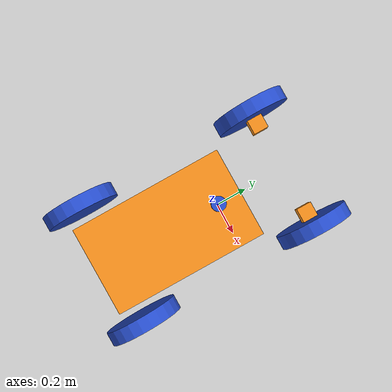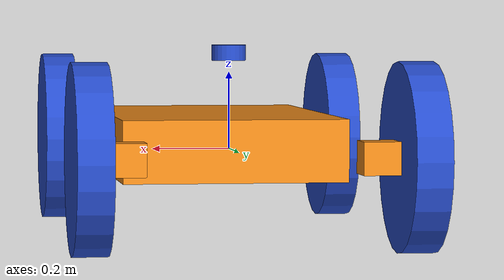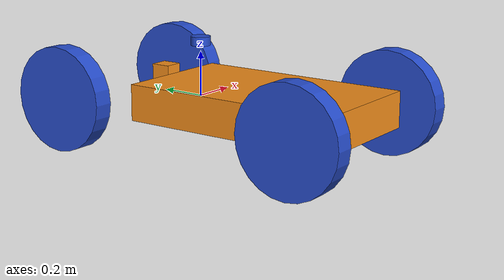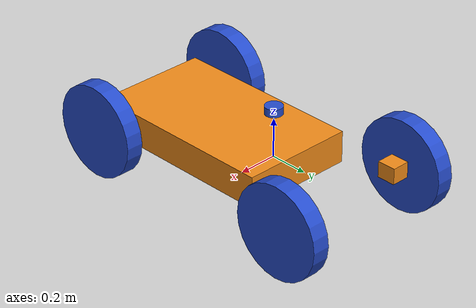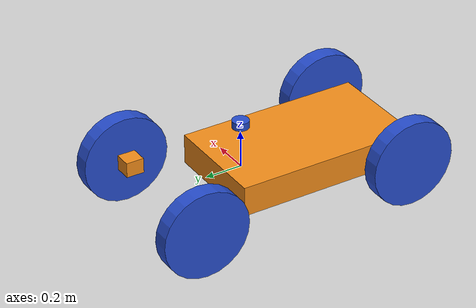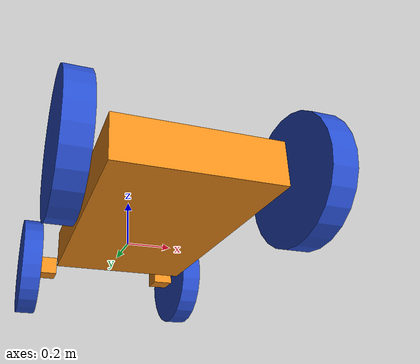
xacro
<?xml version="1.0" ?>

<robot name="mycar" xmlns:xacro="http://www.ros.org/wiki/xacro" >

  <!-- colors/materials -->
  <material name="black">
    <color rgba="0.0 0.0 0.0 1.0" />
  </material>
  <material name="blue">
    <color rgba="0.203125 0.23828125 0.28515625 1.0" />
  </material>
  <material name="green">
    <color rgba="0.0 0.8 0.0 1.0" />
  </material>
  <material name="grey">
    <color rgba="0.2 0.2 0.2 1.0" />
  </material>
  <material name="orange">
    <color rgba="1.0 0.423529411765 0.0392156862745 1.0" />
  </material>
  <material name="brown">
    <color rgba="0.870588235294 0.811764705882 0.764705882353 1.0" />
  </material>
  <material name="red">
    <color rgba="0.80078125 0.12890625 0.1328125 1.0" />
  </material>
  <material name="white">
    <color rgba="1.0 1.0 1.0 1.0" />
  </material>

  <gazebo reference="chassis_link">
    <material>Gazebo/Orange</material>
  </gazebo>
  <gazebo reference="left_steer_block_link">
    <material>Gazebo/Orange</material>
  </gazebo>
  <gazebo reference="right_steer_block_link">
    <material>Gazebo/Orange</material>
  </gazebo>
  <gazebo reference="left_rear_wheel_link">
    <material>Gazebo/Blue</material>
  </gazebo>
  <gazebo reference="right_rear_wheel_link">
    <material>Gazebo/Blue</material>
  </gazebo>
  <gazebo reference="right_front_wheel_link">
    <material>Gazebo/Blue</material>
  </gazebo>
  <gazebo reference="left_front_wheel_link">
    <material>Gazebo/Blue</material>
  </gazebo>

  <!-- gazebo plugin -->
  <gazebo>
    <plugin name="gazebo_ros_control" filename="libgazebo_ros_control.so">
      <robotNamespace>/ackermann</robotNamespace>
    </plugin>
  </gazebo>

  <!-- joint controllers -->
  <transmission name="left_rear_wheel_trans">
    <type>transmission_interface/SimpleTransmission</type>
    <actuator name="motor_left" >
      <hardwareInterface>hardware_interface/EffortJointInterface</hardwareInterface>
      <mechanicalReduction>1</mechanicalReduction>
    </actuator>
    <joint name="left_rear_wheel_joint">
      <hardwareInterface>hardware_interface/EffortJointInterface</hardwareInterface>
    </joint>
  </transmission>

  <transmission name="right_rear_wheel_trans">
    <type>transmission_interface/SimpleTransmission</type>
    <actuator name="motor_right" >
      <hardwareInterface>hardware_interface/EffortJointInterface</hardwareInterface>
      <mechanicalReduction>1</mechanicalReduction>
    </actuator>
    <joint name="right_rear_wheel_joint">
      <hardwareInterface>hardware_interface/EffortJointInterface</hardwareInterface>
    </joint>
  </transmission>

  <transmission name="left_steer_block_trans">
    <type>transmission_interface/SimpleTransmission</type>
    <actuator name="left_steer" >
      <hardwareInterface>hardware_interface/EffortJointInterface</hardwareInterface>
      <mechanicalReduction>1</mechanicalReduction>
    </actuator>
    <joint name="left_steer_block_joint">
      <hardwareInterface>hardware_interface/EffortJointInterface</hardwareInterface>
    </joint>
  </transmission>

  <transmission name="right_steer_block_trans">
    <type>transmission_interface/SimpleTransmission</type>
    <actuator name="right_steer" >
      <hardwareInterface>hardware_interface/EffortJointInterface</hardwareInterface>
      <mechanicalReduction>1</mechanicalReduction>
    </actuator>
    <joint name="right_steer_block_joint">
      <hardwareInterface>hardware_interface/EffortJointInterface</hardwareInterface>
    </joint>
  </transmission>

    <!-- links -->
    <link name='chassis_link'>
      <inertial>
        <mass value="0.0945291" />
        <origin rpy="0 0 0" xyz="0 -0.342857 0" />
        <inertia ixx="0.00808473" ixy="0" ixz="0" iyy="0.00288146" iyz="0" izz="0.0105516" />
      </inertial>
      <collision name='chassis_collision'>
        <origin rpy="0 0 0" xyz="0 -0.342857 0" />
        <geometry>
          <box size="0.582641 1 0.162223" />
        </geometry>
      </collision>
      <visual name='chassis_visual'>
        <origin rpy="0 0 0" xyz="0 -0.342857 0" />
        <geometry>
          <box size="0.582641 1 0.162223" />
        </geometry>
      </visual>
    </link>

    <link name='left_rear_wheel_link'>
      <inertial>
        <mass value="0.0196261" />
        <origin rpy="0 1.57079 0" xyz="0 0 0" />
        <inertia ixx="0.00028435" ixy="0" ixz="0" iyy="0.00028435" iyz="0" izz="0.00054297" />
      </inertial>
      <visual name='left_rear_wheel_visual'>
        <origin rpy="0 1.57079 0" xyz="0 0 0" />
        <geometry>
          <cylinder radius="0.235227" length="0.0886945" />
        </geometry>
      </visual>
      <collision name='left_rear_wheel_collision'>
        <origin rpy="0 1.57079 0" xyz="0 0 0" />
        <geometry>
          <cylinder radius="0.235227" length="0.0886945" />
        </geometry>
      </collision>
    </link>

    <link name='right_rear_wheel_link'>
      <inertial>
        <mass value="0.0196261" />
        <origin rpy="0 1.57079 0" xyz="0 0 0" />
        <inertia ixx="0.00028435" ixy="0" ixz="0" iyy="0.00028435" iyz="0" izz="0.00054297" />
      </inertial>
      <visual name='right_rear_wheel_visual'>
        <origin rpy="0 1.57079 0" xyz="0 0 0" />
        <geometry>
          <cylinder radius="0.235227" length="0.0886945" />
        </geometry>
      </visual>
      <collision name='right_rear_wheel_collision'>
        <origin rpy="0 1.57079 0" xyz="0 0 0" />
        <geometry>
          <cylinder radius="0.235227" length="0.0886945" />
        </geometry>
      </collision>
    </link>

    <link name='right_front_wheel_link'>
      <inertial>
        <mass value="0.0196261" />
        <origin rpy="0 1.57079 0" xyz="0 0 0" />
        <inertia ixx="0.00028435" ixy="0" ixz="0" iyy="0.00028435" iyz="0" izz="0.00054297" />
      </inertial>
      <visual name='right_front_wheel_visual'>
        <origin rpy="0 1.57079 0" xyz="0 0 0" />
        <geometry>
          <cylinder radius="0.235227" length="0.0886945" />
        </geometry>
      </visual>
      <collision name='right_front_wheel_collision'>
        <origin rpy="0 1.57079 0" xyz="0 0 0" />
        <geometry>
          <cylinder radius="0.235227" length="0.0886945" />
        </geometry>
      </collision>
    </link>

    <link name='left_front_wheel_link'>
      <inertial>
        <mass value="0.0196261" />
        <origin rpy="0 1.57079 0" xyz="0 0 0" />
        <inertia ixx="0.00028435" ixy="0" ixz="0" iyy="0.00028435" iyz="0" izz="0.00054297" />
      </inertial>
      <visual name='left_front_wheel_visual'>
        <origin rpy="0 1.57079 0" xyz="0 0 0" />
        <geometry>
          <cylinder radius="0.235227" length="0.0886945" />
        </geometry>
      </visual>
      <collision name='left_front_wheel_collision'>
        <origin rpy="0 1.57079 0" xyz="0 0 0" />
        <geometry>
          <cylinder radius="0.235227" length="0.0886945" />
        </geometry>
      </collision>
    </link>

    <link name='left_steer_block_link'>
      <inertial>
        <mass value="0.00073514" />
	<origin rpy="0 0 0" xyz="0 0 0" />
        <inertia ixx="9.9e-07" ixy="0" ixz="0" iyy="9.4e-07" iyz="0" izz="1.1e-06" />
      </inertial>
      <visual name='left_steer_block_visual'>
      	<origin rpy="0 0 0" xyz="0 0 0" />
        <geometry>
          <box size="0.092365 0.096673 0.082207" />
        </geometry>
      </visual>
      <collision name='left_steer_block_collision'>
	<origin rpy="0 0 0" xyz="0 0 0" />
        <geometry>
          <box size="0.092365 0.096673 0.082207" />
        </geometry>
      </collision>
    </link>

    <link name='right_steer_block_link'>
      <inertial>
        <mass value="0.00073514" />
	<origin rpy="0 0 0" xyz="0 0 0" />
        <inertia ixx="9.9e-07" ixy="0" ixz="0" iyy="9.4e-07" iyz="0" izz="1.1e-06" />
      </inertial>
      <visual name='right_steer_block_visual'>
	<origin rpy="0 0 0" xyz="0 0 0" />
        <geometry>
          <box size="0.092365 0.096673 0.082207" />
        </geometry>
      </visual>
      <collision name='right_steer_block_collision'>
	<origin rpy="0 0 0" xyz="0 0 0" />
        <geometry>
          <box size="0.092365 0.096673 0.082207" />
        </geometry>
      </collision>
    </link>

  <!-- joints -->
    <joint name='left_steer_block_joint' type='continuous'>
	<origin rpy="0 0 0" xyz="-0.31 0.457143 0" />
      <parent link="chassis_link" />
      <child link="left_steer_block_link" />
      <axis rpy ="0 0 0" xyz="0 0 1" />
      <limit effort="100" velocity="1000" />
      <joint_properties damping="1.0" friction="1.0" />
    </joint>

    <joint name='right_steer_block_joint' type='continuous'>
	<origin rpy="0 0 0" xyz="0.31 0.457143 0" />
      <parent link="chassis_link" />
      <child link="right_steer_block_link" />
      <axis rpy ="0 0 0" xyz="0 0 1" />
      <limit effort="100" velocity="1000" />
      <joint_properties damping="1.0" friction="1.0" />
    </joint>

    <joint name='left_rear_wheel_joint' type='continuous'>
      <origin rpy="0 0 0" xyz="-0.4 -0.742857 0" />
      <parent link="chassis_link" />
      <child link="left_rear_wheel_link" />
      <axis rpy ="0 0 0" xyz="1 0 0" />
      <limit effort="100" velocity="1000" />
      <joint_properties damping="1.0" friction="1.0" />
    </joint>

    <joint name='right_rear_wheel_joint' type='continuous'>
      <origin rpy="0 0 0" xyz="0.4 -0.742857 0" />
      <parent link="chassis_link" />
      <child link="right_rear_wheel_link" />
      <axis rpy ="0 0 0" xyz="1 0 0" />
      <limit effort="100" velocity="1000" />
      <joint_properties damping="1.0" friction="1.0" />
    </joint>

    <joint name='left_front_wheel_joint' type='continuous'>
      <origin rpy="0 0 0" xyz="-0.09 0 0" />
      <parent link="left_steer_block_link" />
      <child link="left_front_wheel_link" />
      <axis rpy ="0 0 0" xyz="1 0 0" />
      <limit effort="100" velocity="1000" />
      <joint_properties damping="1.0" friction="1.0" />
    </joint>

    <joint name='right_front_wheel_joint' type='continuous'>
      <origin rpy="0 0 0" xyz="0.09 0 0" />
      <parent link="right_steer_block_link" />
      <child link="right_front_wheel_link" />
      <axis rpy ="0 0 0" xyz="1 0 0" />
      <limit effort="100" velocity="1000" />
      <joint_properties damping="1.0" friction="1.0" />
    </joint>

<!-- hokuyo 2d laser scanner -->
    <joint name="hokuyo_laser_joint" type="fixed">
        <axis xyz="0 0 1" />
        <origin xyz="0 0 0.25" rpy="0 0 0"/>
        <parent link="chassis_link"/>
        <child link="hokuyo_laser_link"/>
    </joint>

    <link name="hokuyo_laser_link">
        <collision>
            <origin xyz="0 0 0" rpy="0 0 0"/>
            <geometry>
                <cylinder length="0.04" radius="0.045"/>
            </geometry>
        </collision>
        <visual>
            <origin xyz="0 0 0" rpy="0 0 0"/>
            <geometry>
                <cylinder length="0.04" radius="0.045"/>
            </geometry>
            <material name="iRobot/LightBlue"/>
        </visual>
        <inertial>
            <mass value="1e-5" />
            <origin xyz="0 0 0" rpy="0 0 0"/>
            <inertia ixx="1e-6" ixy="0" ixz="0" iyy="1e-6" iyz="0" izz="1e-6" />
        </inertial>
    </link>

    <gazebo reference="hokuyo_laser_link">
        <gravity>true</gravity>
        <sensor type="ray" name="head_hokuyo_sensor">
            <pose>0 0 0 0 0 0</pose>
            <visualize>true</visualize>
            <update_rate>40</update_rate>
            <ray>
                <scan>
                    <horizontal>
                        <samples>360</samples>
                        <resolution>1</resolution>
                        <min_angle>-3.14159</min_angle>
                        <max_angle>3.14159</max_angle>
                    </horizontal>
                </scan>
                <range>
                    <min>0.2</min>
                    <max>40</max>
                    <resolution>0.025</resolution>
                </range>
                <noise>
                    <type>gaussian</type>
                    <mean>0.0</mean>
                    <stddev>0.1</stddev>
                </noise>
            </ray>
            <plugin name="gazebo_ros_head_hokuyo_controller" filename="libgazebo_ros_laser.so">
                <robotNamespace></robotNamespace>
                <topicName>laser_scan</topicName>
                <frameName>hokuyo_laser_link</frameName>
            </plugin>
        </sensor>
    </gazebo>

</robot>
